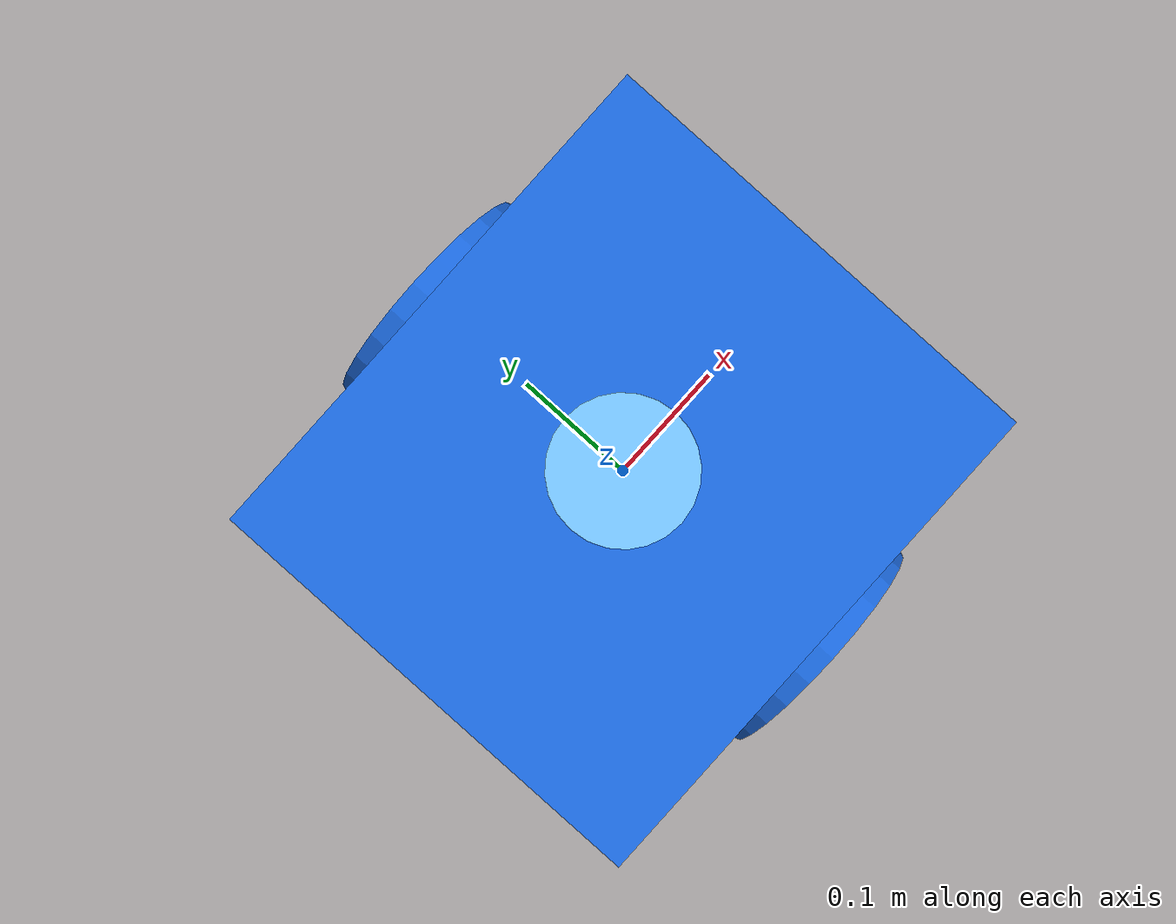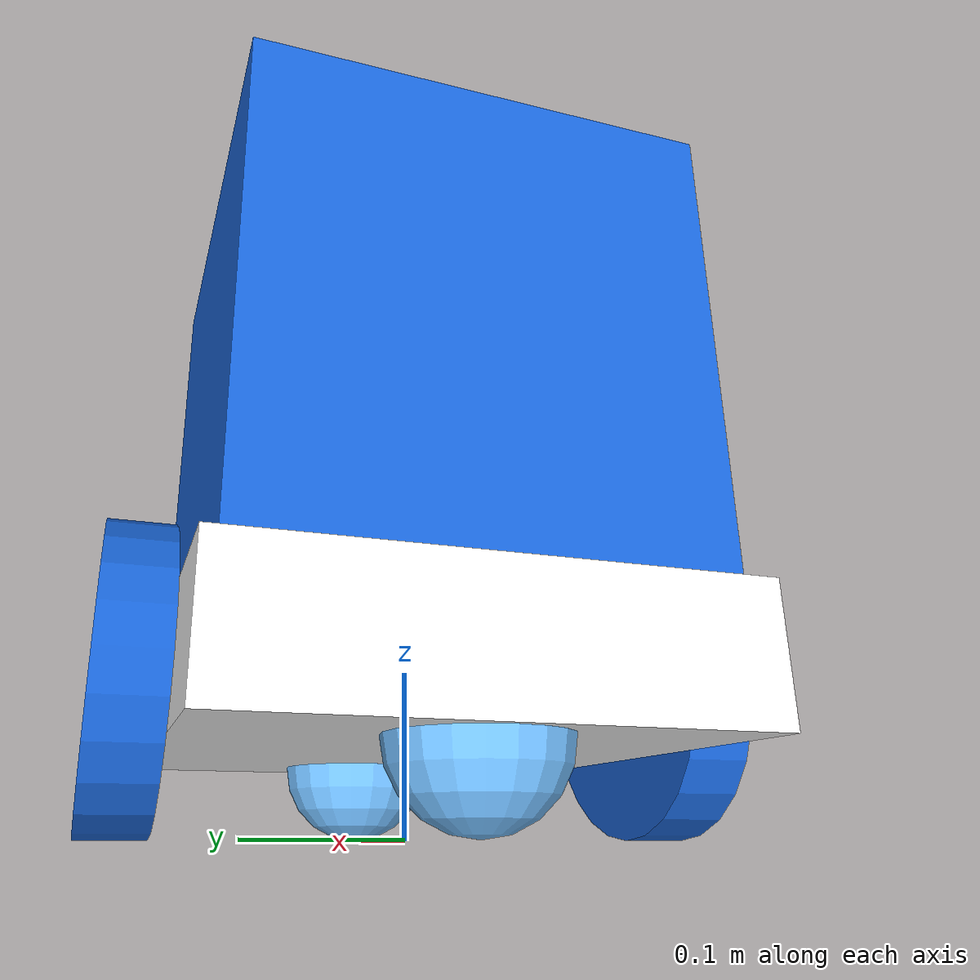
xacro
<?xml version="1.0"?>

<robot xmlns:xacro="http://www.ros.org/wiki/xacro"
       name="delivery_robot">

  <!-- PREFIX -->

  <xacro:arg name="prefix" default="robot1"/>

  <!-- MATERIALS -->

  <material name="white">
    <color rgba="0.95 0.95 0.95 1"/>
  </material>

  <material name="blue">
    <color rgba="0.10 0.40 0.85 1"/>
  </material>

  <material name="sky_blue">
    <color rgba="0.45 0.75 1.00 1"/>
  </material>

  <material name="dark_blue">
    <color rgba="0.05 0.15 0.45 1"/>
  </material>

  <!-- INERTIAL MACROS -->

  <xacro:macro name="inertial_box" params="mass x y z *origin">

    <inertial>

      <xacro:insert_block name="origin"/>

      <mass value="${mass}"/>

      <inertia
        ixx="${(1/12)*mass*(y*y+z*z)}"
        ixy="0.0"
        ixz="0.0"
        iyy="${(1/12)*mass*(x*x+z*z)}"
        iyz="0.0"
        izz="${(1/12)*mass*(x*x+y*y)}"/>

    </inertial>

  </xacro:macro>

  <xacro:macro name="inertial_cylinder" params="mass length radius *origin">

    <inertial>

      <xacro:insert_block name="origin"/>

      <mass value="${mass}"/>

      <inertia
        ixx="${(1/12)*mass*(3*radius*radius+length*length)}"
        ixy="0.0"
        ixz="0.0"
        iyy="${(1/12)*mass*(3*radius*radius+length*length)}"
        iyz="0.0"
        izz="${(1/2)*mass*(radius*radius)}"/>

    </inertial>

  </xacro:macro>

  <xacro:macro name="inertial_sphere" params="mass radius *origin">

    <inertial>

      <xacro:insert_block name="origin"/>

      <mass value="${mass}"/>

      <inertia
        ixx="${(2/5)*mass*(radius*radius)}"
        ixy="0.0"
        ixz="0.0"
        iyy="${(2/5)*mass*(radius*radius)}"
        iyz="0.0"
        izz="${(2/5)*mass*(radius*radius)}"/>

    </inertial>

  </xacro:macro>

  <!-- BASE FOOTPRINT -->

  <link name="$(arg prefix)_base_footprint"/>

  <!-- BASE LINK -->

  <joint name="$(arg prefix)_base_footprint_joint" type="fixed">

    <parent link="$(arg prefix)_base_footprint"/>
    <child link="$(arg prefix)_base_link"/>

    <origin xyz="0 0 0.09" rpy="0 0 0"/>

  </joint>

  <link name="$(arg prefix)_base_link">

    <visual>

      <geometry>
        <box size="0.35 0.30 0.08"/>
      </geometry>

      <material name="white"/>

    </visual>

    <collision>

      <geometry>
        <box size="0.35 0.30 0.08"/>
      </geometry>

    </collision>

    <xacro:inertial_box mass="6.0" x="0.35" y="0.30" z="0.08">

      <origin xyz="0 0 0" rpy="0 0 0"/>

    </xacro:inertial_box>

  </link>

  <gazebo reference="$(arg prefix)_base_link">

    <material>Gazebo/White</material>

    <mu1>0.8</mu1>
    <mu2>0.8</mu2>

    <kp>1000000.0</kp>
    <kd>10.0</kd>

  </gazebo>

  <!-- DRIVE WHEELS -->

  <xacro:macro name="drive_wheel" params="name y_sign">

    <joint name="$(arg prefix)_${name}_wheel_joint" type="continuous">

      <parent link="$(arg prefix)_base_link"/>
      <child link="$(arg prefix)_${name}_wheel"/>

      <origin xyz="0.0 ${y_sign * 0.17} 0.0"
              rpy="-1.5708 0 0"/>

      <axis xyz="0 0 1"/>

      <dynamics damping="0.01" friction="0.1"/>

    </joint>

    <link name="$(arg prefix)_${name}_wheel">

      <visual>

        <geometry>
          <cylinder radius="0.09" length="0.04"/>
        </geometry>

        <material name="blue"/>

      </visual>

      <collision>

        <geometry>
          <cylinder radius="0.09" length="0.04"/>
        </geometry>

      </collision>

      <xacro:inertial_cylinder
        mass="0.6"
        length="0.04"
        radius="0.09">

        <origin xyz="0 0 0" rpy="0 0 0"/>

      </xacro:inertial_cylinder>

    </link>

    <gazebo reference="$(arg prefix)_${name}_wheel">

      <material>Gazebo/Blue</material>

      <mu1>5.0</mu1>
      <mu2>5.0</mu2>

      <kp>10000000.0</kp>
      <kd>10.0</kd>

      <fdir1 value="1 0 0"/>

    </gazebo>

  </xacro:macro>

  <xacro:drive_wheel name="left" y_sign="1"/>
  <xacro:drive_wheel name="right" y_sign="-1"/>

  <!-- CASTERS -->

  <xacro:macro name="caster" params="name x_pos">

    <link name="$(arg prefix)_${name}_caster">

      <visual>

        <geometry>
          <sphere radius="0.05"/>
        </geometry>

        <material name="sky_blue"/>

      </visual>

      <collision>

        <geometry>
          <sphere radius="0.05"/>
        </geometry>

      </collision>

      <xacro:inertial_sphere mass="0.1" radius="0.05">

        <origin xyz="0 0 0" rpy="0 0 0"/>

      </xacro:inertial_sphere>

    </link>

    <joint name="$(arg prefix)_${name}_caster_joint" type="fixed">

      <parent link="$(arg prefix)_base_link"/>
      <child link="$(arg prefix)_${name}_caster"/>

      <origin xyz="${x_pos} 0 -0.04" rpy="0 0 0"/>

    </joint>

  </xacro:macro>

  <xacro:caster name="front" x_pos="0.12"/>
  <xacro:caster name="back" x_pos="-0.12"/>

  <!-- DELIVERY BOX -->

  <link name="$(arg prefix)_delivery_box">

    <visual>

      <geometry>
        <box size="0.32 0.28 0.30"/>
      </geometry>

      <material name="blue"/>

    </visual>

    <collision>

      <geometry>
        <box size="0.32 0.28 0.30"/>
      </geometry>

    </collision>

  </link>

  <joint name="$(arg prefix)_delivery_box_joint" type="fixed">

    <parent link="$(arg prefix)_base_link"/>
    <child link="$(arg prefix)_delivery_box"/>

    <origin xyz="0 0 0.18" rpy="0 0 0"/>

  </joint>

  <!-- LASER -->

  <link name="$(arg prefix)_laser">

    <visual>

      <geometry>
        <cylinder radius="0.04" length="0.05"/>
      </geometry>

      <material name="sky_blue"/>

    </visual>

    <collision>

      <geometry>
        <cylinder radius="0.04" length="0.05"/>
      </geometry>

    </collision>

  </link>

  <joint name="$(arg prefix)_lidar_joint" type="fixed">

    <parent link="$(arg prefix)_delivery_box"/>
    <child link="$(arg prefix)_laser"/>

    <origin xyz="0 0 0.175" rpy="0 0 0"/>

  </joint>

  <!-- CAMERA -->

  <link name="$(arg prefix)_camera_link">

    <visual>

      <geometry>
        <box size="0.03 0.07 0.03"/>
      </geometry>

      <material name="sky_blue"/>

    </visual>

  </link>

  <joint name="$(arg prefix)_camera_joint" type="fixed">

    <parent link="$(arg prefix)_delivery_box"/>
    <child link="$(arg prefix)_camera_link"/>

    <origin xyz="0.162 0 -0.06" rpy="0 0 0"/>

  </joint>

  <link name="$(arg prefix)_camera_link_optical"/>

  <joint name="$(arg prefix)_camera_optical_joint" type="fixed">

    <parent link="$(arg prefix)_camera_link"/>
    <child link="$(arg prefix)_camera_link_optical"/>

    <origin xyz="0 0 0" rpy="-1.5708 0 -1.5708"/>

  </joint>

  <!-- LIDAR SENSOR -->

  <gazebo reference="$(arg prefix)_laser">

    <sensor name="$(arg prefix)_lidar" type="ray">

      <always_on>true</always_on>
      <visualize>true</visualize>
      <update_rate>20</update_rate>

      <ray>

        <scan>

          <horizontal>

            <samples>360</samples>
            <resolution>1</resolution>
            <min_angle>-3.14159</min_angle>
            <max_angle>3.14159</max_angle>

          </horizontal>

        </scan>

        <range>

          <min>0.15</min>
          <max>12.0</max>
          <resolution>0.01</resolution>

        </range>

      </ray>

      <plugin name="$(arg prefix)_gazebo_ros_ray_sensor"
              filename="libgazebo_ros_ray_sensor.so">

        <ros>

          <namespace>$(arg prefix)</namespace>

          <remapping>~/out:=scan</remapping>

        </ros>

        <output_type>sensor_msgs/LaserScan</output_type>

        <frame_name>$(arg prefix)_laser</frame_name>

      </plugin>

    </sensor>

  </gazebo>

  <!-- CAMERA SENSOR -->

  <gazebo reference="$(arg prefix)_camera_link">

    <sensor name="$(arg prefix)_depth_camera" type="depth">

      <always_on>true</always_on>
      <update_rate>15</update_rate>
      <visualize>true</visualize>

      <camera>

        <horizontal_fov>1.047</horizontal_fov>

        <image>

          <width>640</width>
          <height>480</height>
          <format>R8G8B8</format>

        </image>

        <clip>

          <near>0.05</near>
          <far>10.0</far>

        </clip>

      </camera>

      <plugin name="$(arg prefix)_gazebo_ros_camera"
              filename="libgazebo_ros_camera.so">

        <ros>

          <namespace>$(arg prefix)</namespace>

          <remapping>image_raw:=image_raw</remapping>
          <remapping>camera_info:=camera_info</remapping>
          <remapping>points:=points</remapping>

        </ros>

        <frame_name>$(arg prefix)_camera_link_optical</frame_name>

      </plugin>

    </sensor>

  </gazebo>

  <!-- DIFF DRIVE -->

  <gazebo>

    <plugin name="$(arg prefix)_diff_drive"
            filename="libgazebo_ros_diff_drive.so">

      <ros>

        <namespace>$(arg prefix)</namespace>

      </ros>

      <left_joint>$(arg prefix)_left_wheel_joint</left_joint>

      <right_joint>$(arg prefix)_right_wheel_joint</right_joint>

      <wheel_separation>0.34</wheel_separation>

      <wheel_diameter>0.18</wheel_diameter>

      <odometry_topic>odom</odometry_topic>

      <odometry_frame>$(arg prefix)_odom</odometry_frame>

      <robot_base_frame>$(arg prefix)_base_footprint</robot_base_frame>

      <publish_odom>true</publish_odom>

      <publish_odom_tf>true</publish_odom_tf>

      <publish_wheel_tf>true</publish_wheel_tf>

      <update_rate>100</update_rate>

    </plugin>

  </gazebo>

</robot>
